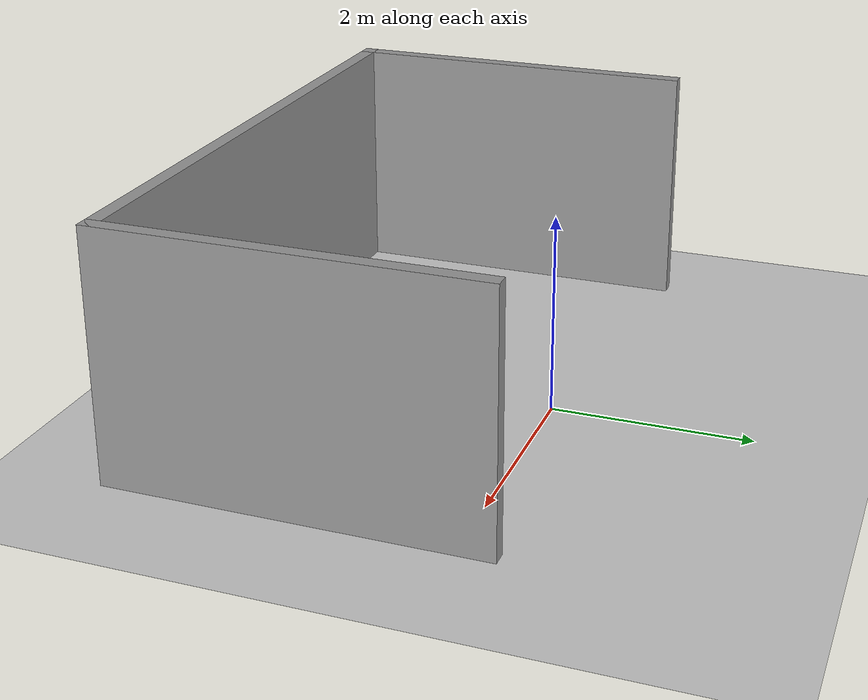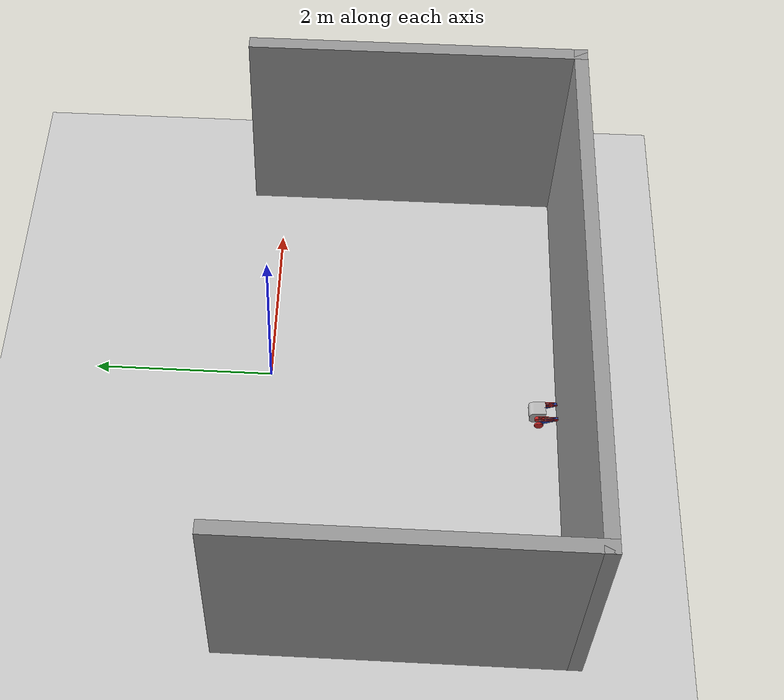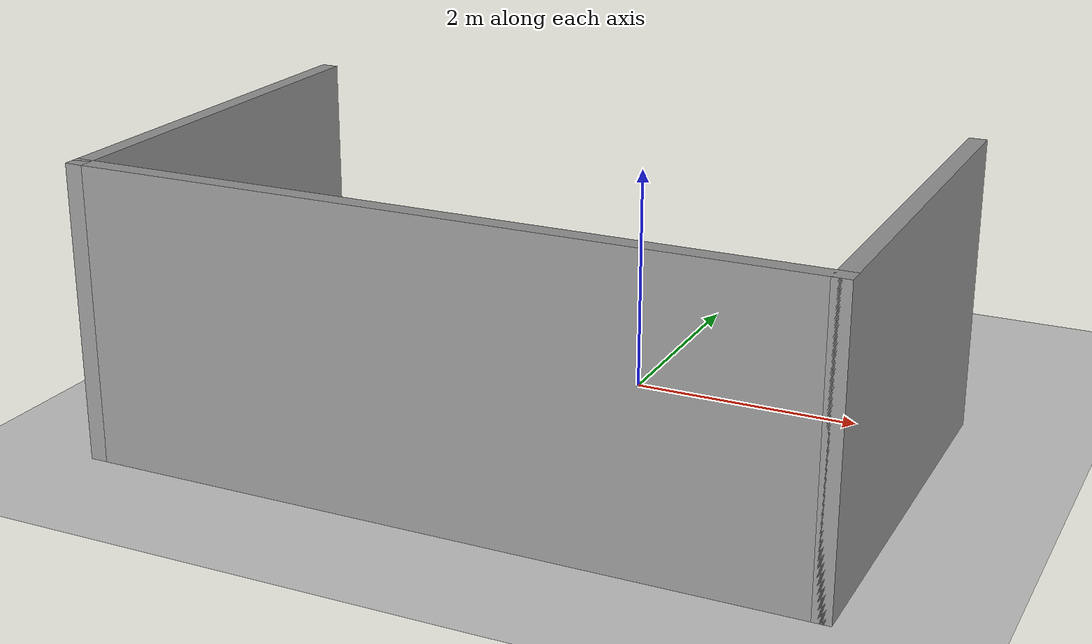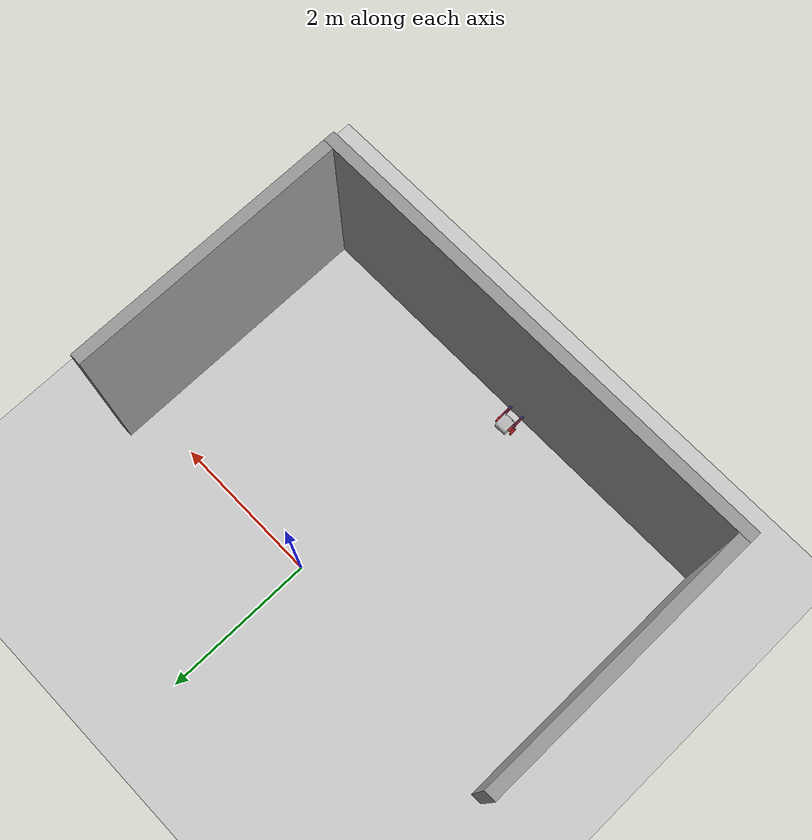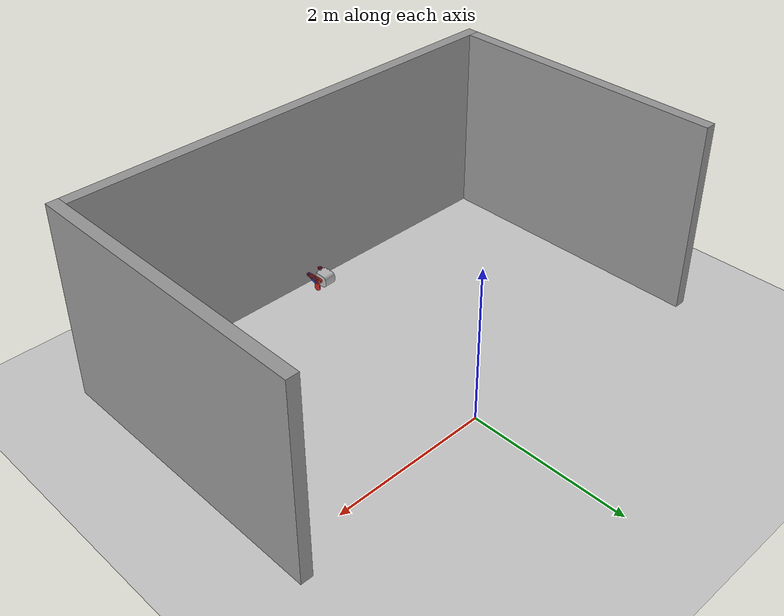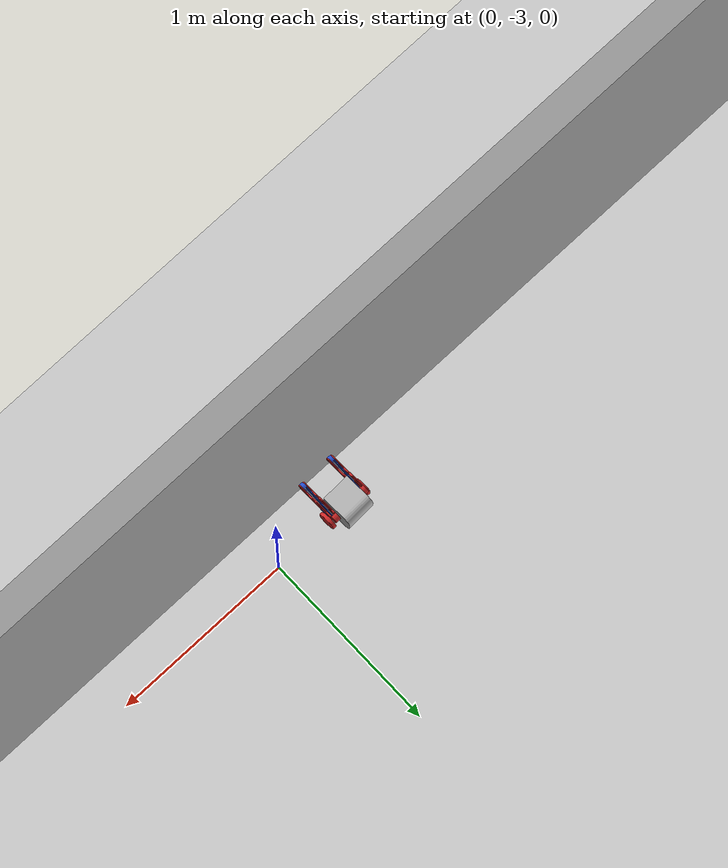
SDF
<sdf version="1.7">
 <world name="default">
  <light name="sun" type="directional">
   <pose>0 0 10 0 -0 0</pose>
   <diffuse>0.8 0.8 0.8 1</diffuse>
   <specular>0.2 0.2 0.2 1</specular>
   <attenuation>
    <range>1000</range>
    <constant>0.9</constant>
    <linear>0.01</linear>
    <quadratic>0.001</quadratic>
   </attenuation>
   <direction>-0.5 0.1 -0.9</direction>
   <spot><inner_angle>0</inner_angle><outer_angle>0</outer_angle><falloff>0</falloff></spot>
  </light>
  <model name="ground_plane">
   <static>1</static>
   <link name="link">
    <collision name="collision">
     <geometry><plane><normal>0 0 1</normal><size>100 100</size></plane></geometry>
     <surface><friction><ode><mu>100</mu><mu2>50</mu2></ode></friction></surface>
    </collision>
    <visual name="visual">
     <cast_shadows>0</cast_shadows>
     <geometry><plane><normal>0 0 1</normal><size>100 100</size></plane></geometry>
     <material>
      <script><uri>file://media/materials/scripts/gazebo.material</uri><name>Gazebo/Grey</name></script>
     </material>
    </visual>
   </link>
  </model>
  <gravity>0 0 -9.8</gravity>
  <magnetic_field>6e-06 2.3e-05 -4.2e-05</magnetic_field>
  <atmosphere type="adiabatic"/>
  <physics type="ode">
   <max_step_size>0.001</max_step_size>
   <real_time_factor>1</real_time_factor>
   <real_time_update_rate>1000</real_time_update_rate>
  </physics>
  <scene><ambient>0.4 0.4 0.4 1</ambient><background>0.7 0.7 0.7 1</background><shadows>1</shadows></scene>
  <spherical_coordinates>
   <surface_model>EARTH_WGS84</surface_model>
   <latitude_deg>0</latitude_deg>
   <longitude_deg>0</longitude_deg>
   <elevation>0</elevation>
   <heading_deg>0</heading_deg>
  </spherical_coordinates>
  <model name="Untitled">
   <pose>-0.3 -1.49 0 0 -0 0</pose>
   <link name="Wall_0">
    <collision name="Wall_0_Collision">
     <geometry><box><size>6.25 0.15 2.5</size></box></geometry>
     <pose>0 0 1.25 0 -0 0</pose>
    </collision>
    <visual name="Wall_0_Visual">
     <pose>0 0 1.25 0 -0 0</pose>
     <geometry><box><size>6.25 0.15 2.5</size></box></geometry>
     <material>
      <script><uri>file://media/materials/scripts/gazebo.material</uri><name>Gazebo/Grey</name></script>
      <ambient>1 1 1 1</ambient>
     </material>
     <meta><layer>0</layer></meta>
    </visual>
    <pose>-0 -1.8 0 0 -0 0</pose>
   </link>
   <link name="Wall_1">
    <collision name="Wall_1_Collision">
     <geometry><box><size>3.75 0.15 2.5</size></box></geometry>
     <pose>0 0 1.25 0 -0 0</pose>
    </collision>
    <visual name="Wall_1_Visual">
     <pose>0 0 1.25 0 -0 0</pose>
     <geometry><box><size>3.75 0.15 2.5</size></box></geometry>
     <material>
      <script><uri>file://media/materials/scripts/gazebo.material</uri><name>Gazebo/Grey</name></script>
      <ambient>1 1 1 1</ambient>
     </material>
     <meta><layer>0</layer></meta>
    </visual>
    <pose>3.05 0 0 0 -0 1.5708</pose>
   </link>
   <link name="Wall_3">
    <collision name="Wall_3_Collision">
     <geometry><box><size>3.75 0.15 2.5</size></box></geometry>
     <pose>0 0 1.25 0 -0 0</pose>
    </collision>
    <visual name="Wall_3_Visual">
     <pose>0 0 1.25 0 -0 0</pose>
     <geometry><box><size>3.75 0.15 2.5</size></box></geometry>
     <material>
      <script><uri>file://media/materials/scripts/gazebo.material</uri><name>Gazebo/Grey</name></script>
      <ambient>1 1 1 1</ambient>
     </material>
     <meta><layer>0</layer></meta>
    </visual>
    <pose>-3.05 0 0 0 -0 1.5708</pose>
   </link>
   <static>1</static>
  </model>
  <model name="bot_model">
   <link name="world_link">
    <inertial>
     <pose>-0 -0.001826 0.129234 0 -0 0</pose>
     <mass>8</mass>
     <inertia>
      <ixx>0.052838</ixx>
      <ixy>0</ixy>
      <ixz>0</ixz>
      <iyy>0.04905</iyy>
      <iyz>-0.0011035</iyz>
      <izz>0.055787</izz>
     </inertia>
    </inertial>
    <collision name="world_link_fixed_joint_lump__base_link_collision">
     <pose>0 0 0.13 0 -0 0</pose>
     <geometry>
      <mesh><scale>1 1 1</scale><uri>/home/jjk/wbrobot_ws/src/robot_description/meshes/base_link.STL</uri></mesh>
     </geometry>
    </collision>
    <visual name="world_link_visual"><geometry><box><size>0.01 0.01 0.01</size></box></geometry></visual>
    <visual name="world_link_fixed_joint_lump__base_link_visual_1">
     <pose>0 0 0.13 0 -0 0</pose>
     <geometry>
      <mesh><scale>1 1 1</scale><uri>/home/jjk/wbrobot_ws/src/robot_description/meshes/base_link.STL</uri></mesh>
     </geometry>
    </visual>
   </link>
   <joint name="datui1_joint" type="revolute">
    <pose relative_to="world_link">-0.08 0 0.13 3.14159 -0 -3.14159</pose>
    <parent>world_link</parent>
    <child>datui1_Link</child>
    <axis>
     <xyz>-1 0 0</xyz>
     <limit><lower>0</lower><upper>3.14</upper><effort>200</effort><velocity>20</velocity></limit>
     <dynamics><spring_reference>0</spring_reference><spring_stiffness>0</spring_stiffness></dynamics>
    </axis>
   </joint>
   <link name="datui1_Link">
    <pose relative_to="datui1_joint">0 0 0 0 -0 0</pose>
    <inertial>
     <pose>0.015766 -0.072335 -3.3e-05 0 -0 0</pose>
     <mass>0.090996</mass>
     <inertia>
      <ixx>0.00063669</ixx>
      <ixy>5.1817e-06</ixy>
      <ixz>0</ixz>
      <iyy>3.9867e-05</iyy>
      <iyz>-1.7891e-06</iyz>
      <izz>0.00062095</izz>
     </inertia>
    </inertial>
    <collision name="datui1_Link_collision">
     <geometry>
      <mesh><scale>1 1 1</scale><uri>/home/jjk/wbrobot_ws/src/robot_description/meshes/datui1_Link.STL</uri></mesh>
     </geometry>
    </collision>
    <visual name="datui1_Link_visual">
     <geometry>
      <mesh><scale>1 1 1</scale><uri>/home/jjk/wbrobot_ws/src/robot_description/meshes/datui1_Link.STL</uri></mesh>
     </geometry>
     <material>
      <script><name>Gazebo/Red</name><uri>file://media/materials/scripts/gazebo.material</uri></script>
     </material>
    </visual>
   </link>
   <joint name="xiaotui1_joint" type="revolute">
    <pose relative_to="datui1_Link">0.005 -0.21 0 -0.43633 -0 -3.14159</pose>
    <parent>datui1_Link</parent>
    <child>xiaotui1_Link</child>
    <axis>
     <xyz>-1 0 0</xyz>
     <limit><lower>0</lower><upper>3.14</upper><effort>200</effort><velocity>20</velocity></limit>
     <dynamics><spring_reference>0</spring_reference><spring_stiffness>0</spring_stiffness></dynamics>
    </axis>
   </joint>
   <link name="xiaotui1_Link">
    <pose relative_to="xiaotui1_joint">0 0 0 0 -0 0</pose>
    <inertial>
     <pose>-0.010009 -0.087975 0 0 -0 0</pose>
     <mass>0.089561</mass>
     <inertia>
      <ixx>0.00045806</ixx>
      <ixy>1.3763e-07</ixy>
      <ixz>0</ixz>
      <iyy>1.4234e-05</iyy>
      <iyz>0</iyz>
      <izz>0.00045351</izz>
     </inertia>
    </inertial>
    <collision name="xiaotui1_Link_collision">
     <geometry>
      <mesh>
       <scale>1 1 1</scale>
       <uri>/home/jjk/wbrobot_ws/src/robot_description/meshes/xiaotui1_Link.STL</uri>
      </mesh>
     </geometry>
    </collision>
    <visual name="xiaotui1_Link_visual">
     <geometry>
      <mesh>
       <scale>1 1 1</scale>
       <uri>/home/jjk/wbrobot_ws/src/robot_description/meshes/xiaotui1_Link.STL</uri>
      </mesh>
     </geometry>
     <material>
      <script><name>Gazebo/Blue</name><uri>file://media/materials/scripts/gazebo.material</uri></script>
     </material>
    </visual>
   </link>
   <joint name="wheel1_joint" type="revolute">
    <pose relative_to="xiaotui1_Link">0 -0.21 0 -1.1611 0 0</pose>
    <parent>xiaotui1_Link</parent>
    <child>wheel1_Link</child>
    <axis>
     <xyz>-1 0 0</xyz>
     <limit><effort>200</effort><velocity>20</velocity><lower>-1e+16</lower><upper>1e+16</upper></limit>
     <dynamics>
      <damping>0.05</damping>
      <friction>0</friction>
      <spring_reference>0</spring_reference>
      <spring_stiffness>0</spring_stiffness>
     </dynamics>
    </axis>
   </joint>
   <link name="wheel1_Link">
    <pose relative_to="wheel1_joint">0 0 0 0 -0 0</pose>
    <inertial>
     <pose>-0.033743 -0 -0 0 -0 0</pose>
     <mass>0.10249</mass>
     <inertia>
      <ixx>0.00015426</ixx>
      <ixy>0</ixy>
      <ixz>0</ixz>
      <iyy>8.0659e-05</iyy>
      <iyz>0</iyz>
      <izz>8.066e-05</izz>
     </inertia>
    </inertial>
    <collision name="wheel1_Link_collision">
     <geometry>
      <mesh><scale>1 1 1</scale><uri>/home/jjk/wbrobot_ws/src/robot_description/meshes/wheel1_Link.STL</uri></mesh>
     </geometry>
     <surface>
      <contact><ode><kp>1e+07</kp><kd>1</kd></ode></contact>
      <friction><ode><mu2>100</mu2></ode></friction>
     </surface>
    </collision>
    <visual name="wheel1_Link_visual">
     <geometry>
      <mesh><scale>1 1 1</scale><uri>/home/jjk/wbrobot_ws/src/robot_description/meshes/wheel1_Link.STL</uri></mesh>
     </geometry>
     <material>
      <script><name>Gazebo/Red</name><uri>file://media/materials/scripts/gazebo.material</uri></script>
     </material>
    </visual>
   </link>
   <joint name="datui2_joint" type="revolute">
    <pose relative_to="world_link">0.08 0 0.13 0 -0 0</pose>
    <parent>world_link</parent>
    <child>datui2_Link</child>
    <axis>
     <xyz>1 0 0</xyz>
     <limit><lower>0</lower><upper>3.14</upper><effort>200</effort><velocity>20</velocity></limit>
     <dynamics><spring_reference>0</spring_reference><spring_stiffness>0</spring_stiffness></dynamics>
    </axis>
   </joint>
   <link name="datui2_Link">
    <pose relative_to="datui2_joint">0 0 0 0 -0 0</pose>
    <inertial>
     <pose>0.015766 -0.072335 -3.3e-05 0 -0 0</pose>
     <mass>0.090996</mass>
     <inertia>
      <ixx>0.00063669</ixx>
      <ixy>5.18e-06</ixy>
      <ixz>0</ixz>
      <iyy>3.987e-05</iyy>
      <iyz>-1.79e-06</iyz>
      <izz>0.00062095</izz>
     </inertia>
    </inertial>
    <collision name="datui2_Link_collision">
     <geometry>
      <mesh><scale>1 1 1</scale><uri>/home/jjk/wbrobot_ws/src/robot_description/meshes/datui2_Link.STL</uri></mesh>
     </geometry>
    </collision>
    <visual name="datui2_Link_visual">
     <geometry>
      <mesh><scale>1 1 1</scale><uri>/home/jjk/wbrobot_ws/src/robot_description/meshes/datui2_Link.STL</uri></mesh>
     </geometry>
     <material>
      <script><name>Gazebo/Red</name><uri>file://media/materials/scripts/gazebo.material</uri></script>
     </material>
    </visual>
   </link>
   <joint name="xiaotui2_joint" type="revolute">
    <pose relative_to="datui2_Link">0.005 -0.21 0 0.43633 -0 -3.14159</pose>
    <parent>datui2_Link</parent>
    <child>xiaotui2_Link</child>
    <axis>
     <xyz>1 0 0</xyz>
     <limit><lower>0</lower><upper>3.14</upper><effort>200</effort><velocity>20</velocity></limit>
     <dynamics><spring_reference>0</spring_reference><spring_stiffness>0</spring_stiffness></dynamics>
    </axis>
   </joint>
   <link name="xiaotui2_Link">
    <pose relative_to="xiaotui2_joint">0 0 0 0 -0 0</pose>
    <inertial>
     <pose>-0.010009 -0.087975 0 0 -0 0</pose>
     <mass>0.089561</mass>
     <inertia>
      <ixx>0.00045806</ixx>
      <ixy>1.3763e-07</ixy>
      <ixz>0</ixz>
      <iyy>1.4234e-05</iyy>
      <iyz>0</iyz>
      <izz>0.00045351</izz>
     </inertia>
    </inertial>
    <collision name="xiaotui2_Link_collision">
     <geometry>
      <mesh>
       <scale>1 1 1</scale>
       <uri>/home/jjk/wbrobot_ws/src/robot_description/meshes/xiaotui2_Link.STL</uri>
      </mesh>
     </geometry>
    </collision>
    <visual name="xiaotui2_Link_visual">
     <geometry>
      <mesh>
       <scale>1 1 1</scale>
       <uri>/home/jjk/wbrobot_ws/src/robot_description/meshes/xiaotui2_Link.STL</uri>
      </mesh>
     </geometry>
     <material>
      <script><name>Gazebo/Blue</name><uri>file://media/materials/scripts/gazebo.material</uri></script>
     </material>
    </visual>
   </link>
   <joint name="wheel2_joint" type="revolute">
    <pose relative_to="xiaotui2_Link">0 -0.21 0 -1.9805 0 0</pose>
    <parent>xiaotui2_Link</parent>
    <child>wheel2_Link</child>
    <axis>
     <xyz>1 0 0</xyz>
     <limit><effort>200</effort><velocity>20</velocity><lower>-1e+16</lower><upper>1e+16</upper></limit>
     <dynamics>
      <damping>0.05</damping>
      <friction>0</friction>
      <spring_reference>0</spring_reference>
      <spring_stiffness>0</spring_stiffness>
     </dynamics>
    </axis>
   </joint>
   <link name="wheel2_Link">
    <pose relative_to="wheel2_joint">0 0 0 0 -0 0</pose>
    <inertial>
     <pose>-0.033743 -0 -0 0 -0 0</pose>
     <mass>0.10249</mass>
     <inertia>
      <ixx>0.00015426</ixx>
      <ixy>0</ixy>
      <ixz>0</ixz>
      <iyy>8.0659e-05</iyy>
      <iyz>0</iyz>
      <izz>8.066e-05</izz>
     </inertia>
    </inertial>
    <collision name="wheel2_Link_collision">
     <geometry>
      <mesh><scale>1 1 1</scale><uri>/home/jjk/wbrobot_ws/src/robot_description/meshes/wheel2_Link.STL</uri></mesh>
     </geometry>
     <surface>
      <contact><ode><kp>1e+07</kp><kd>1</kd></ode></contact>
      <friction><ode><mu2>100</mu2></ode></friction>
     </surface>
    </collision>
    <visual name="wheel2_Link_visual">
     <geometry>
      <mesh><scale>1 1 1</scale><uri>/home/jjk/wbrobot_ws/src/robot_description/meshes/wheel2_Link.STL</uri></mesh>
     </geometry>
     <material>
      <script><name>Gazebo/Red</name><uri>file://media/materials/scripts/gazebo.material</uri></script>
     </material>
    </visual>
   </link>
   <plugin name="gazebo_ros_control" filename="libgazebo_ros_control.so">
    <robotNamespace>/</robotNamespace>
   </plugin>
   <static>0</static>
   <plugin name="imu_plugin" filename="libgazebo_ros_imu.so">
    <alwaysOn>1</alwaysOn>
    <topicName>imu</topicName>
    <serviceName>imu_service</serviceName>
    <gaussianNoise>0.0</gaussianNoise>
    <updateRate>800</updateRate>
    <robotNamespace>/</robotNamespace>
    <bodyName>world_link</bodyName>
    <xyzOffset>0 0 -0.13</xyzOffset>
    <rpyOffset>0 -0 0</rpyOffset>
   </plugin>
   <pose>-0.445148 -2.98625 0.01075 -0.023269 0.000519 0.038962</pose>
  </model>
 </world>
</sdf>
